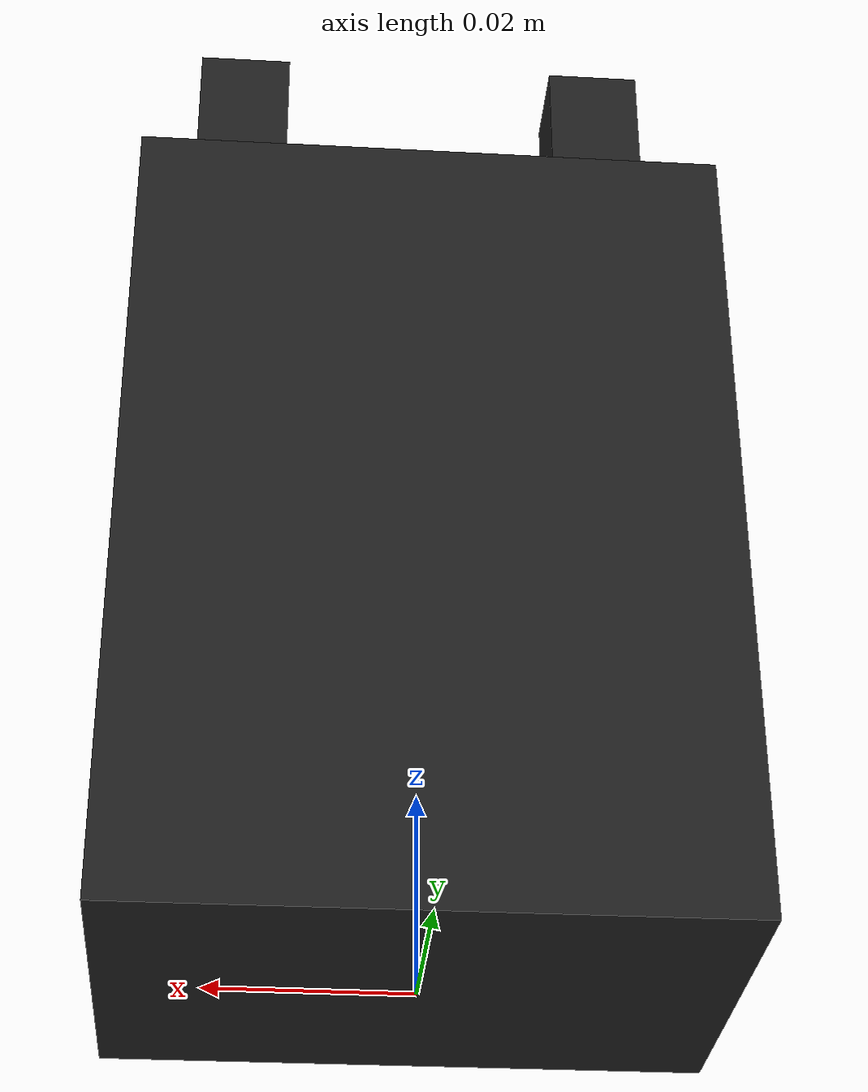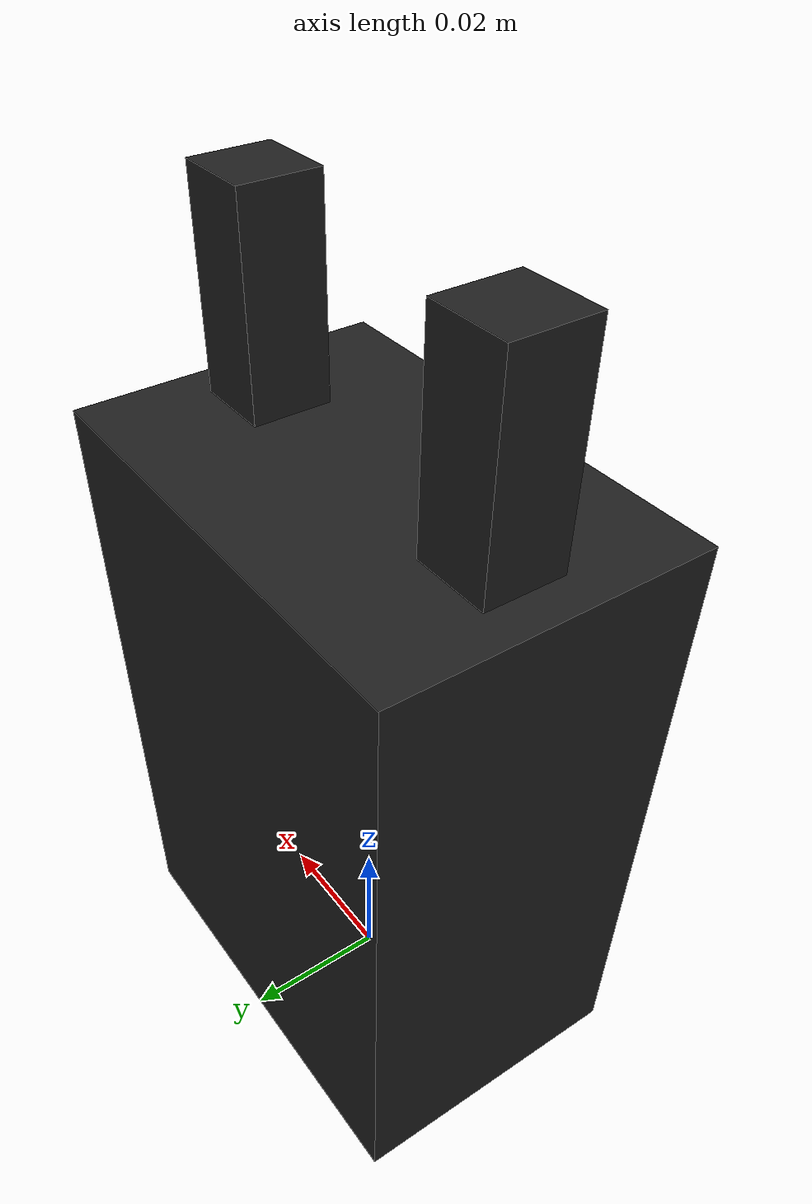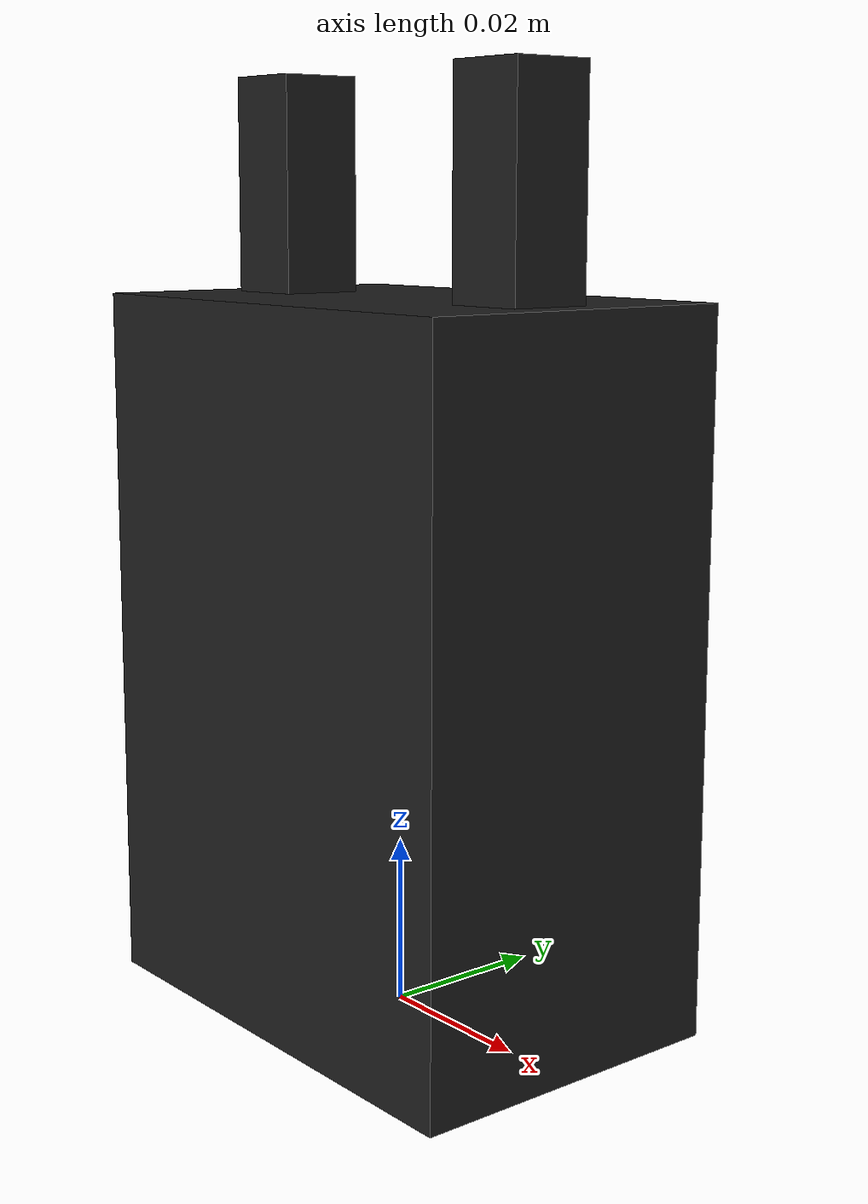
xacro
<?xml version="1.0"?>
<robot xmlns:xacro="http://www.ros.org/wiki/xacro">

  <link name="link5_part1">
    <visual>
      <geometry>
        <box size="0.06 0.04 0.08465"/>
      </geometry>
      <origin xyz="0 0 0.042325" rpy="0 0 0"/>
      <material name="black"/>
    </visual>
  </link>

  <joint name="link5_fixed1" type="fixed">
    <parent link="link5_part1"/>
    <child link="link5_part2"/>
    <origin xyz="0.02 0 0.06" rpy="0 0 0"/>
  </joint>

  <link name="link5_part2">
    <visual>
      <geometry>
        <box size="0.01 0.01 0.05"/>
      </geometry>
      <origin xyz="0 0 0.025" rpy="0 0 0"/>
      <material name="black"/>
    </visual>
  </link>

  <joint name="link5_fixed2" type="fixed">
    <parent link="link5_part1"/>
    <child link="link5_part3"/>
    <origin xyz="-0.02 0 0.06" rpy="0 0 0"/>
  </joint>

  <link name="link5_part3">
    <visual>
      <geometry>
        <box size="0.01 0.01 0.05"/>
      </geometry>
      <origin xyz="0 0 0.025" rpy="0 0 0"/>
      <material name="black"/>
    </visual>
  </link>
</robot>
